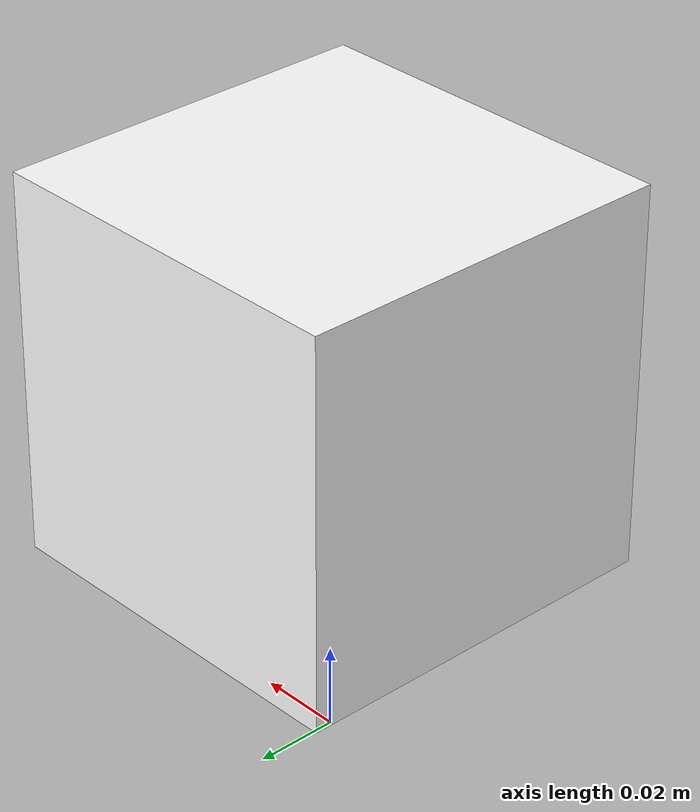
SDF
<?xml version="1.0"?>
<sdf version="1.6">
  <model name="aruco_marker">
    <static>true</static>
    <link name="link">
      <visual name="front_visual">
        <pose>0 0 0.09 0 0 0</pose>
        <geometry>
          <box>
            <size>0.09 0.09 0.09</size>
          </box>
        </geometry>
        <material>
          <script>
            <uri>model://aruco_markers/0/materials/scripts</uri>
            <uri>model://aruco_markers/0/materials/textures</uri>
            <name>Marker0</name>
          </script>
          <ambient>1 1 1 1</ambient>
          <diffuse>1 1 1 1</diffuse>
          <specular>0 0 0 1</specular>
          <pbr>
            <metal>
              <albedo_map>model://aruco_markers/0/materials/textures/0.png</albedo_map>
              <metalness>0.0</metalness>
              <roughness>1.0</roughness>
            </metal>
          </pbr>
        </material>
      </visual>
    </link>
  </model>
</sdf>
